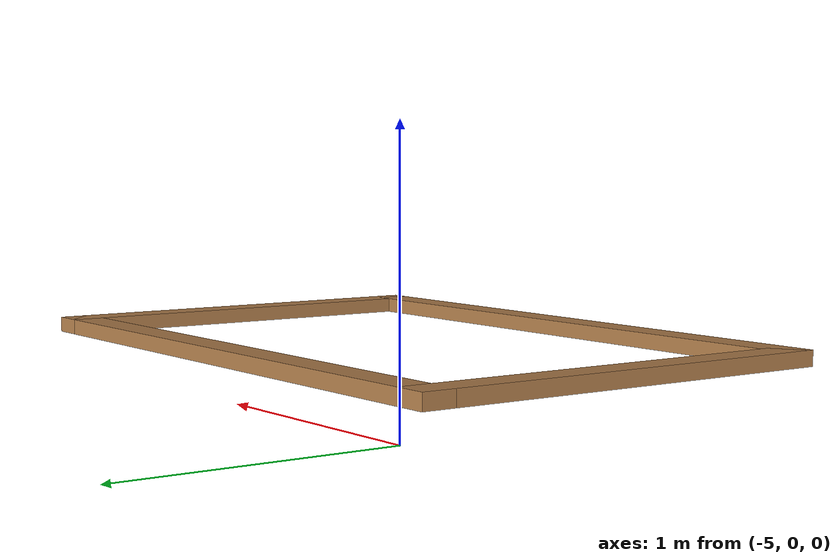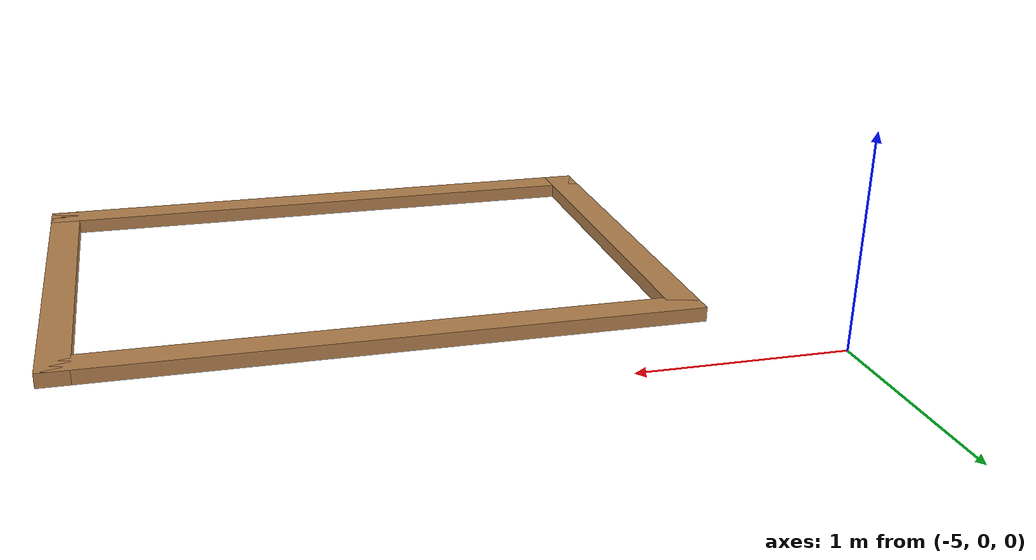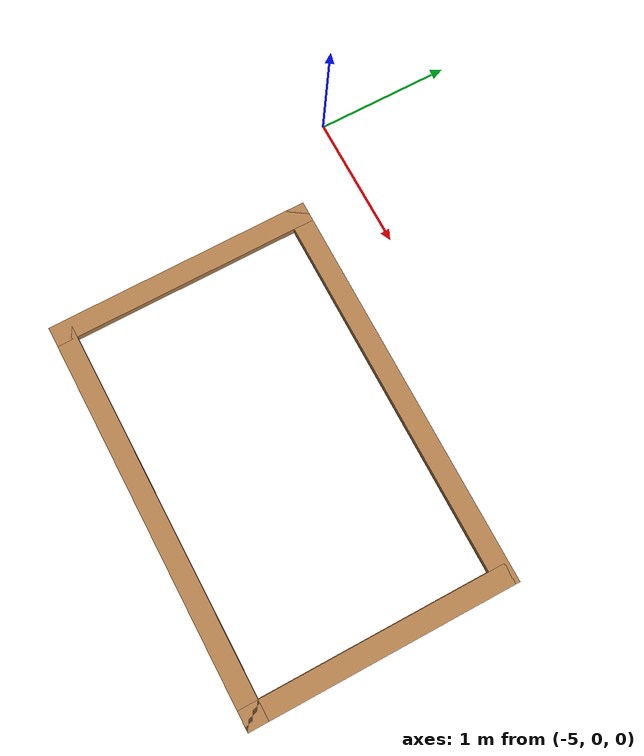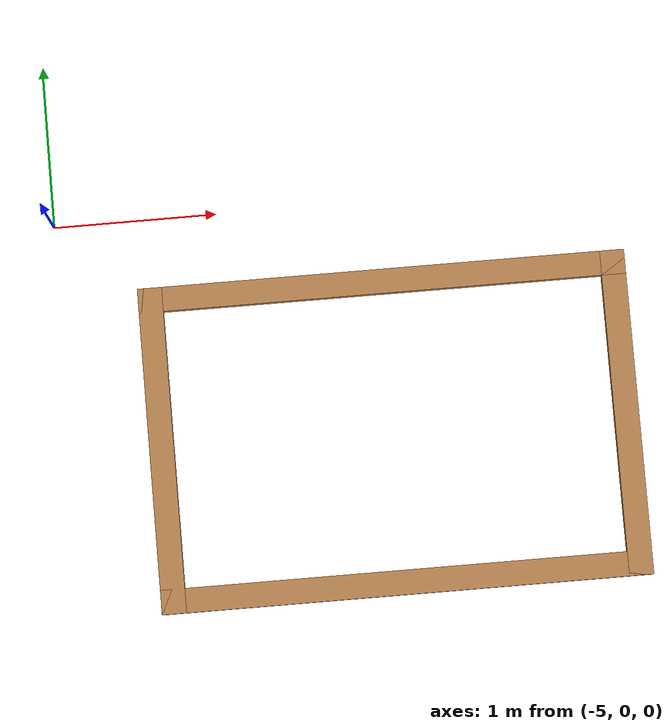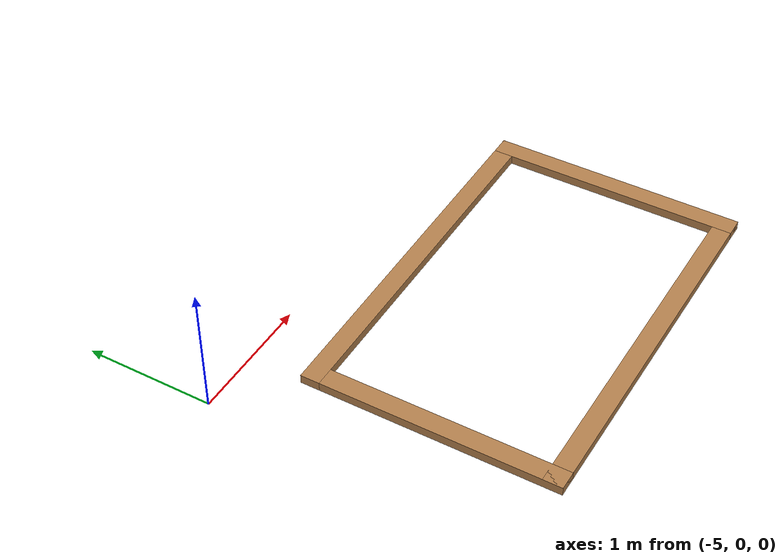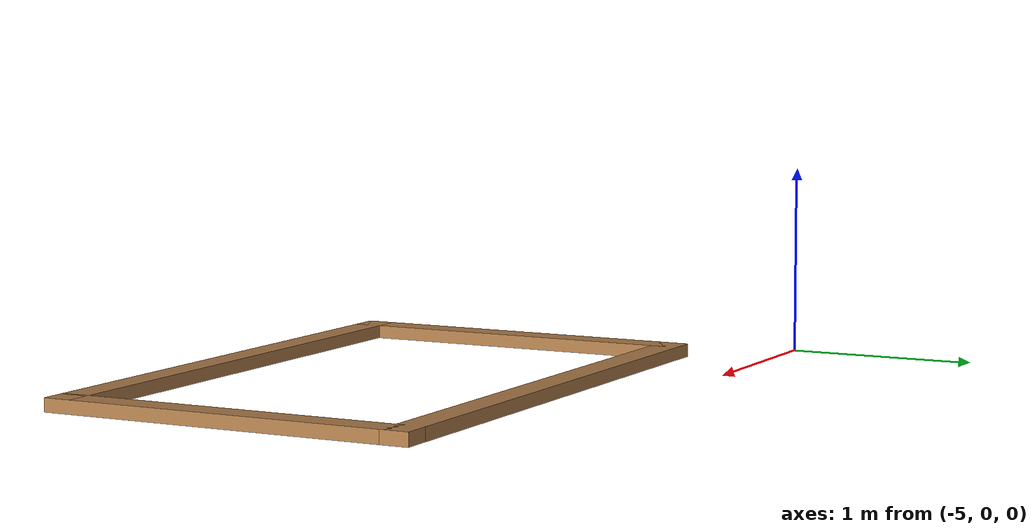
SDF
<?xml version='1.0'?>
<sdf version='1.7'>
  <model name='table'>
    <pose>-2.26 -1.216 0 0 -0 0</pose>
    <link name='Wall_10'>
      <collision name='Wall_10_Collision'>
        <geometry>
          <box>
            <size>3 0.15 0.07</size>
          </box>
        </geometry>
        <pose>0 0 0.035 0 -0 0</pose>
      </collision>
      <visual name='Wall_10_Visual'>
        <pose>0 0 0.035 0 -0 0</pose>
        <geometry>
          <box>
            <size>3 0.15 0.07</size>
          </box>
        </geometry>
        <material>
          <script>
            <uri>file://media/materials/scripts/gazebo.material</uri>
            <name>Gazebo/Wood</name>
          </script>
          <ambient>1 1 1 1</ambient>
        </material>
        <meta>
          <layer>0</layer>
        </meta>
      </visual>
      <pose>-0.76 -1.141 0 0 -0 0</pose>
    </link>
    <link name='Wall_11'>
      <collision name='Wall_11_Collision'>
        <geometry>
          <box>
            <size>2 0.15 0.07</size>
          </box>
        </geometry>
        <pose>0 0 0.035 0 -0 0</pose>
      </collision>
      <visual name='Wall_11_Visual'>
        <pose>0 0 0.035 0 -0 0</pose>
        <geometry>
          <box>
            <size>2 0.15 0.07</size>
          </box>
        </geometry>
        <material>
          <script>
            <uri>file://media/materials/scripts/gazebo.material</uri>
            <name>Gazebo/Wood</name>
          </script>
          <ambient>1 1 1 1</ambient>
        </material>
        <meta>
          <layer>0</layer>
        </meta>
      </visual>
      <pose>0.665 -0.216 0 0 -0 1.5708</pose>
    </link>
    <link name='Wall_12'>
      <collision name='Wall_12_Collision'>
        <geometry>
          <box>
            <size>3 0.15 0.07</size>
          </box>
        </geometry>
        <pose>0 0 0.035 0 -0 0</pose>
      </collision>
      <visual name='Wall_12_Visual'>
        <pose>0 0 0.035 0 -0 0</pose>
        <geometry>
          <box>
            <size>3 0.15 0.07</size>
          </box>
        </geometry>
        <material>
          <script>
            <uri>file://media/materials/scripts/gazebo.material</uri>
            <name>Gazebo/Wood</name>
          </script>
          <ambient>1 1 1 1</ambient>
        </material>
        <meta>
          <layer>0</layer>
        </meta>
      </visual>
      <pose>-0.76 0.709 0 0 -0 3.14159</pose>
    </link>
    <link name='Wall_9'>
      <collision name='Wall_9_Collision'>
        <geometry>
          <box>
            <size>2 0.15 0.07</size>
          </box>
        </geometry>
        <pose>0 0 0.035 0 -0 0</pose>
      </collision>
      <visual name='Wall_9_Visual'>
        <pose>0 0 0.035 0 -0 0</pose>
        <geometry>
          <box>
            <size>2 0.15 0.07</size>
          </box>
        </geometry>
        <material>
          <script>
            <uri>file://media/materials/scripts/gazebo.material</uri>
            <name>Gazebo/Wood</name>
          </script>
          <ambient>1 1 1 1</ambient>
        </material>
        <meta>
          <layer>0</layer>
        </meta>
      </visual>
      <pose>-2.185 -0.216 0 0 -0 -1.5708</pose>
    </link>
    <static>1</static>
  </model>
</sdf>
